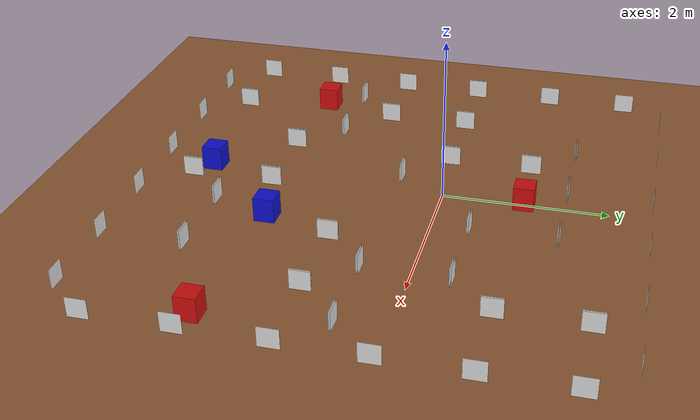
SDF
<sdf version="1.5">
 <world name="maze_6x6_v1_victimas">
  <physics type="ode">
   <max_step_size>0.001</max_step_size>
   <real_time_factor>1</real_time_factor>
   <real_time_update_rate>1000</real_time_update_rate>
   <gravity>0 0 -9.8</gravity>
  </physics>
  <plugin filename="gz-sim-physics-system" name="gz::sim::systems::Physics"/>
  <plugin filename="gz-sim-user-commands-system" name="gz::sim::systems::UserCommands"/>
  <plugin filename="gz-sim-scene-broadcaster-system" name="gz::sim::systems::SceneBroadcaster"/>
  <plugin filename="gz-sim-contact-system" name="gz::sim::systems::Contact"/>
  <plugin filename="gz-sim-sensors-system" name="gz::sim::systems::Sensors">
   <render_engine>ogre2</render_engine>
  </plugin>
  <plugin filename="gz-sim-imu-system" name="gz::sim::systems::Imu"/>
  <scene>
   <shadows>false</shadows>
   <ambient>0.2 0.2 0.2 1</ambient>
   <background>1 1 1 1</background>
   <grid>false</grid>
   <origin_visual>false</origin_visual>
  </scene>
  <include><uri>model://sun</uri></include>
  <light name="camera_spot_1_light" type="spot">
   <pose>-6 4 4 0 -1 -0.8</pose>
   <diffuse>0.5 0.5 0.5 1</diffuse>
   <specular>0.1 0.1 0.1 1</specular>
   <direction>0 0 -1</direction>
   <attenuation>
    <range>20</range>
    <constant>0.2</constant>
    <linear>0.01</linear>
    <quadratic>0.001</quadratic>
   </attenuation>
   <cast_shadows>0</cast_shadows>
   <spot><inner_angle>0.6</inner_angle><outer_angle>1</outer_angle><falloff>1</falloff></spot>
  </light>
  <light name="camera_spot_2_light" type="spot">
   <pose>5 -3 4 0 0.8 -0.6</pose>
   <diffuse>0.5 0.5 0.5 1</diffuse>
   <specular>0.1 0.1 0.1 1</specular>
   <direction>0 0 -1</direction>
   <attenuation>
    <range>20</range>
    <constant>0.3</constant>
    <linear>0.01</linear>
    <quadratic>0.001</quadratic>
   </attenuation>
   <cast_shadows>0</cast_shadows>
   <spot><inner_angle>0.6</inner_angle><outer_angle>1</outer_angle><falloff>1</falloff></spot>
  </light>
  <include><uri>model://floor_parquet2</uri><pose>0.5 -0.5 0 0 0 0</pose></include>
  <include><uri>model://maze_3_tags</uri><pose>-2.5 -3.5 0 0 0 0</pose></include>
  <model name="marcas_color">
   <static>1</static>
   <link name="cuadrado_rojo_1">
    <pose>0.0013 0.9937 0.15 0 0 0</pose>
    <collision name="collision"><geometry><box><size>0.25 0.25 0.3</size></box></geometry></collision>
    <visual name="visual">
     <geometry><box><size>0.25 0.25 0.3</size></box></geometry>
     <material>
      <ambient>0.8 0.05 0.05 1</ambient>
      <diffuse>0.8 0.05 0.05 1</diffuse>
      <specular>0.1 0.1 0.1 1</specular>
     </material>
    </visual>
   </link>
   <link name="cuadrado_azul_1">
    <pose>0.9563 -1.9086 0.15 0 0 0</pose>
    <collision name="collision"><geometry><box><size>0.25 0.25 0.3</size></box></geometry></collision>
    <visual name="visual">
     <geometry><box><size>0.25 0.25 0.3</size></box></geometry>
     <material>
      <ambient>0.05 0.05 0.8 1</ambient>
      <diffuse>0.05 0.05 0.8 1</diffuse>
      <specular>0.1 0.1 0.1 1</specular>
     </material>
    </visual>
   </link>
   <link name="cuadrado_rojo_2">
    <pose>2.9552 -2.0360 0.15 0 0 0</pose>
    <collision name="collision"><geometry><box><size>0.25 0.25 0.3</size></box></geometry></collision>
    <visual name="visual">
     <geometry><box><size>0.25 0.25 0.3</size></box></geometry>
     <material>
      <ambient>0.8 0.05 0.05 1</ambient>
      <diffuse>0.8 0.05 0.05 1</diffuse>
      <specular>0.1 0.1 0.1 1</specular>
     </material>
    </visual>
   </link>
   <link name="cuadrado_azul_2">
    <pose>-0.0847 -2.9586 0.15 0 0 0</pose>
    <collision name="collision"><geometry><box><size>0.25 0.25 0.3</size></box></geometry></collision>
    <visual name="visual">
     <geometry><box><size>0.25 0.25 0.3</size></box></geometry>
     <material>
      <ambient>0.05 0.05 0.8 1</ambient>
      <diffuse>0.05 0.05 0.8 1</diffuse>
      <specular>0.1 0.1 0.1 1</specular>
     </material>
    </visual>
   </link>
   <link name="cuadrado_rojo_3">
    <pose>-2.0847 -2.0202 0.15 0 0 0</pose>
    <collision name="collision"><geometry><box><size>0.25 0.25 0.3</size></box></geometry></collision>
    <visual name="visual">
     <geometry><box><size>0.25 0.25 0.3</size></box></geometry>
     <material>
      <ambient>0.8 0.05 0.05 1</ambient>
      <diffuse>0.8 0.05 0.05 1</diffuse>
      <specular>0.1 0.1 0.1 1</specular>
     </material>
    </visual>
   </link>
  </model>
 </world>
</sdf>

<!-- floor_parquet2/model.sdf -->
<sdf version='1.4'>
  <model name='parquet2_plane'>
    <static>true</static>
    <link name='link'>
      <collision name='collision_parquet2'>
        <geometry>
          <plane>
            <normal>0 0 1</normal>
            <size>500 500</size>
          </plane>
        </geometry>
        <surface>
          <friction>
            <ode>
              <mu>0.5</mu>
              <mu2>.5</mu2>
            </ode>
          </friction>
        </surface>
      </collision>
      <visual name='visual_parquet2'>
        <pose>0 0 0 0 0 0</pose>

        <cast_shadows>false</cast_shadows>
        <geometry>
          <plane>
            <normal>0 0 1</normal>
            <size>9 9</size>
          </plane>
        </geometry>
        <material>
          <ambient>0.35 0.22 0.13 1</ambient>
          <diffuse>0.55 0.35 0.20 1</diffuse>
          <specular>0.05 0.05 0.05 1</specular>
        </material>
      </visual>
    </link>
  </model>
</sdf>

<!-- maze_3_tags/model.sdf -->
<sdf version="1.5">

 <model name="tag36h11_maze_3">
    <static>true</static>
    <link name='tags'>

<!-- Row 0, outer wall along increasing x axis (y:0) -->
<!-- Tags 0 to 9 -->
      <visual name='tag36_11_00000'>
        <!-- Y: sets yaw or direction towards the ar tag is pointing to -->
        <pose>0.5 0.011 0.3 1.5708 0 3.14159</pose>
        <cast_shadows>false</cast_shadows>
        <geometry>
          <plane>
            <normal>0 0 1</normal>
            <size>0.24 0.24</size>
          </plane>
        </geometry>
        <material>
          <ambient>0.85 0.85 0.85 1</ambient>
          <diffuse>0.85 0.85 0.85 1</diffuse>
          <specular>0.1 0.1 0.1 1</specular>
        </material>
      </visual>

      <visual name='tag36_11_00001'>
        <pose>1.5 0.011 0.3 1.5708 0 3.14159</pose>
        <cast_shadows>false</cast_shadows>
        <geometry>
          <plane>
            <normal>0 0 1</normal>
            <size>0.24 0.24</size>
          </plane>
        </geometry>
        <material>
          <ambient>0.85 0.85 0.85 1</ambient>
          <diffuse>0.85 0.85 0.85 1</diffuse>
          <specular>0.1 0.1 0.1 1</specular>
        </material>
      </visual>

      <visual name='tag36_11_00002'>
        <pose>2.5 0.011 0.3 1.5708 0 3.14159</pose>
        <cast_shadows>false</cast_shadows>
        <geometry>
          <plane>
            <normal>0 0 1</normal>
            <size>0.24 0.24</size>
          </plane>
        </geometry>
        <material>
          <ambient>0.85 0.85 0.85 1</ambient>
          <diffuse>0.85 0.85 0.85 1</diffuse>
          <specular>0.1 0.1 0.1 1</specular>
        </material>
      </visual>

      <visual name='tag36_11_00003'>
        <pose>3.5 0.011 0.3 1.5708 0 3.14159</pose>
        <cast_shadows>false</cast_shadows>
        <geometry>
          <plane>
            <normal>0 0 1</normal>
            <size>0.24 0.24</size>
          </plane>
        </geometry>
        <material>
          <ambient>0.85 0.85 0.85 1</ambient>
          <diffuse>0.85 0.85 0.85 1</diffuse>
          <specular>0.1 0.1 0.1 1</specular>
        </material>
      </visual>

      <visual name='tag36_11_00004'>
        <pose>4.5 0.011 0.3 1.5708 0 3.14159</pose>
        <cast_shadows>false</cast_shadows>
        <geometry>
          <plane>
            <normal>0 0 1</normal>
            <size>0.24 0.24</size>
          </plane>
        </geometry>
        <material>
          <ambient>0.85 0.85 0.85 1</ambient>
          <diffuse>0.85 0.85 0.85 1</diffuse>
          <specular>0.1 0.1 0.1 1</specular>
        </material>
      </visual>

      <visual name='tag36_11_00005'>
        <pose>5.5 0.011 0.3 1.5708 0 3.14159</pose>
        <cast_shadows>false</cast_shadows>
        <geometry>
          <plane>
            <normal>0 0 1</normal>
            <size>0.24 0.24</size>
          </plane>
        </geometry>
        <material>
          <ambient>0.85 0.85 0.85 1</ambient>
          <diffuse>0.85 0.85 0.85 1</diffuse>
          <specular>0.1 0.1 0.1 1</specular>
        </material>
      </visual>

<!-- Row 1, first row of panels along increasing x axis (y:1) -->
      <!-- Tags 10 to 29 -->
      <!-- Panel 1 in Row 1 -->
      <!-- Panel 2 in Row 1 -->

      <!-- Panel 3 in Row 1 -->

      <!-- Panel 4 in Row 1 -->
      <visual name='tag36_11_00016'>
        <pose>3.5 1.011 0.3 1.5708 0 3.14159</pose>
        <cast_shadows>false</cast_shadows>
        <geometry>
          <plane>
            <normal>0 0 1</normal>
            <size>0.24 0.24</size>
          </plane>
        </geometry>
        <material>
          <ambient>0.85 0.85 0.85 1</ambient>
          <diffuse>0.85 0.85 0.85 1</diffuse>
          <specular>0.1 0.1 0.1 1</specular>
        </material>
      </visual>

      <visual name='tag36_11_00017'>
        <pose>3.5 0.989 0.3 1.5708 0 0</pose>
        <cast_shadows>false</cast_shadows>
        <geometry>
          <plane>
            <normal>0 0 1</normal>
            <size>0.24 0.24</size>
          </plane>
        </geometry>
        <material>
          <ambient>0.85 0.85 0.85 1</ambient>
          <diffuse>0.85 0.85 0.85 1</diffuse>
          <specular>0.1 0.1 0.1 1</specular>
        </material>
      </visual>

     <!-- Panel 5 in Row 1 -->
      <visual name='tag36_11_00018'>
        <pose>4.5 1.011 0.3 1.5708 0 3.14159</pose>
        <cast_shadows>false</cast_shadows>
        <geometry>
          <plane>
            <normal>0 0 1</normal>
            <size>0.24 0.24</size>
          </plane>
        </geometry>
        <material>
          <ambient>0.85 0.85 0.85 1</ambient>
          <diffuse>0.85 0.85 0.85 1</diffuse>
          <specular>0.1 0.1 0.1 1</specular>
        </material>
      </visual>

      <visual name='tag36_11_00019'>
        <pose>4.5 0.989 0.3 1.5708 0 0</pose>
        <cast_shadows>false</cast_shadows>
        <geometry>
          <plane>
            <normal>0 0 1</normal>
            <size>0.24 0.24</size>
          </plane>
        </geometry>
        <material>
          <ambient>0.85 0.85 0.85 1</ambient>
          <diffuse>0.85 0.85 0.85 1</diffuse>
          <specular>0.1 0.1 0.1 1</specular>
        </material>
      </visual>

      <!-- Panel 6 in Row 1 -->

<!-- Row 2, second row of panels along increasing x axis (y:2) -->
      <!-- Tags 30 to 49 -->
      <!-- Panel 1 in Row 2 -->
      <visual name='tag36_11_00030'>
        <!-- Y: sets yaw or direction towards the ar tag is pointing to -->
        <pose>0.5 2.011 0.3 1.5708 0 3.14159</pose>
        <cast_shadows>false</cast_shadows>
        <geometry>
          <plane>
            <normal>0 0 1</normal>
            <size>0.24 0.24</size>
          </plane>
        </geometry>
        <material>
          <ambient>0.85 0.85 0.85 1</ambient>
          <diffuse>0.85 0.85 0.85 1</diffuse>
          <specular>0.1 0.1 0.1 1</specular>
        </material>
      </visual>

      <visual name='tag36_11_00031'>
        <!-- Y: sets yaw or direction towards the ar tag is pointing to -->
        <pose>0.5 1.989 0.3 1.5708 0 0</pose>
        <cast_shadows>false</cast_shadows>
        <geometry>
          <plane>
            <normal>0 0 1</normal>
            <size>0.24 0.24</size>
          </plane>
        </geometry>
        <material>
          <ambient>0.85 0.85 0.85 1</ambient>
          <diffuse>0.85 0.85 0.85 1</diffuse>
          <specular>0.1 0.1 0.1 1</specular>
        </material>
      </visual>

      <!-- Panel 2 in Row 2 -->
      <visual name='tag36_11_00032'>
        <pose>1.5 2.011 0.3 1.5708 0 3.14159</pose>
        <cast_shadows>false</cast_shadows>
        <geometry>
          <plane>
            <normal>0 0 1</normal>
            <size>0.24 0.24</size>
          </plane>
        </geometry>
        <material>
          <ambient>0.85 0.85 0.85 1</ambient>
          <diffuse>0.85 0.85 0.85 1</diffuse>
          <specular>0.1 0.1 0.1 1</specular>
        </material>
      </visual>

      <visual name='tag36_11_00033'>
        <pose>1.5 1.989 0.3 1.5708 0 0</pose>
        <cast_shadows>false</cast_shadows>
        <geometry>
          <plane>
            <normal>0 0 1</normal>
            <size>0.24 0.24</size>
          </plane>
        </geometry>
        <material>
          <ambient>0.85 0.85 0.85 1</ambient>
          <diffuse>0.85 0.85 0.85 1</diffuse>
          <specular>0.1 0.1 0.1 1</specular>
        </material>
      </visual>

      <!-- Panel 3 in Row 2 -->

      <!-- Panel 4 in Row 2 -->

     <!-- Panel 5 in Row 2 -->

      <!-- Panel 6 in Row 2 -->

<!-- Row 3, third row of panels along increasing x axis (y:3) -->
      <!-- Tags 50 to 69 -->
      <!-- Panel 1 in Row 3 -->
      <!-- Panel 2 in Row 3 -->
      <!-- Panel 3 in Row 3 -->
      <visual name='tag36_11_00054'>
        <pose>2.5 3.011 0.3 1.5708 0 3.14159</pose>
        <cast_shadows>false</cast_shadows>
        <geometry>
          <plane>
            <normal>0 0 1</normal>
            <size>0.24 0.24</size>
          </plane>
        </geometry>
        <material>
          <ambient>0.85 0.85 0.85 1</ambient>
          <diffuse>0.85 0.85 0.85 1</diffuse>
          <specular>0.1 0.1 0.1 1</specular>
        </material>
      </visual>

      <visual name='tag36_11_00055'>
        <pose>2.5 2.989 0.3 1.5708 0 0</pose>
        <cast_shadows>false</cast_shadows>
        <geometry>
          <plane>
            <normal>0 0 1</normal>
            <size>0.24 0.24</size>
          </plane>
        </geometry>
        <material>
          <ambient>0.85 0.85 0.85 1</ambient>
          <diffuse>0.85 0.85 0.85 1</diffuse>
          <specular>0.1 0.1 0.1 1</specular>
        </material>
      </visual>

      <!-- Panel 4 in Row 3 -->
     <!-- Panel 5 in Row 3 -->
      <visual name='tag36_11_00058'>
        <pose>4.5 3.011 0.3 1.5708 0 3.14159</pose>
        <cast_shadows>false</cast_shadows>
        <geometry>
          <plane>
            <normal>0 0 1</normal>
            <size>0.24 0.24</size>
          </plane>
        </geometry>
        <material>
          <ambient>0.85 0.85 0.85 1</ambient>
          <diffuse>0.85 0.85 0.85 1</diffuse>
          <specular>0.1 0.1 0.1 1</specular>
        </material>
      </visual>

      <visual name='tag36_11_00059'>
        <pose>4.5 2.989 0.3 1.5708 0 0</pose>
        <cast_shadows>false</cast_shadows>
        <geometry>
          <plane>
            <normal>0 0 1</normal>
            <size>0.24 0.24</size>
          </plane>
        </geometry>
        <material>
          <ambient>0.85 0.85 0.85 1</ambient>
          <diffuse>0.85 0.85 0.85 1</diffuse>
          <specular>0.1 0.1 0.1 1</specular>
        </material>
      </visual>

      <!-- Panel 6 in Row 3 -->
      <visual name='tag36_11_00060'>
        <pose>5.5 3.011 0.3 1.5708 0 3.14159</pose>
        <cast_shadows>false</cast_shadows>
        <geometry>
          <plane>
            <normal>0 0 1</normal>
            <size>0.24 0.24</size>
          </plane>
        </geometry>
        <material>
          <ambient>0.85 0.85 0.85 1</ambient>
          <diffuse>0.85 0.85 0.85 1</diffuse>
          <specular>0.1 0.1 0.1 1</specular>
        </material>
      </visual>

      <visual name='tag36_11_00061'>
        <pose>5.5 2.989 0.3 1.5708 0 0</pose>
        <cast_shadows>false</cast_shadows>
        <geometry>
          <plane>
            <normal>0 0 1</normal>
            <size>0.24 0.24</size>
          </plane>
        </geometry>
        <material>
          <ambient>0.85 0.85 0.85 1</ambient>
          <diffuse>0.85 0.85 0.85 1</diffuse>
          <specular>0.1 0.1 0.1 1</specular>
        </material>
      </visual>

<!-- Row 4, fourth row of panels along increasing x axis (y:4) -->
      <!-- Tags 70 to 89 -->
      <!-- Panel 1 in Row 4 -->
      <!-- Panel 2 in Row 4 -->
      <!-- Panel 3 in Row 4 -->
      <!-- Panel 4 in Row 4 -->
      <visual name='tag36_11_00076'>
        <pose>3.5 4.011 0.3 1.5708 0 3.14159</pose>
        <cast_shadows>false</cast_shadows>
        <geometry>
          <plane>
            <normal>0 0 1</normal>
            <size>0.24 0.24</size>
          </plane>
        </geometry>
        <material>
          <ambient>0.85 0.85 0.85 1</ambient>
          <diffuse>0.85 0.85 0.85 1</diffuse>
          <specular>0.1 0.1 0.1 1</specular>
        </material>
      </visual>

      <visual name='tag36_11_00077'>
        <pose>3.5 3.989 0.3 1.5708 0 0</pose>
        <cast_shadows>false</cast_shadows>
        <geometry>
          <plane>
            <normal>0 0 1</normal>
            <size>0.24 0.24</size>
          </plane>
        </geometry>
        <material>
          <ambient>0.85 0.85 0.85 1</ambient>
          <diffuse>0.85 0.85 0.85 1</diffuse>
          <specular>0.1 0.1 0.1 1</specular>
        </material>
      </visual>

     <!-- Panel 5 in Row 4 -->
      <visual name='tag36_11_00078'>
        <pose>4.5 4.011 0.3 1.5708 0 3.14159</pose>
        <cast_shadows>false</cast_shadows>
        <geometry>
          <plane>
            <normal>0 0 1</normal>
            <size>0.24 0.24</size>
          </plane>
        </geometry>
        <material>
          <ambient>0.85 0.85 0.85 1</ambient>
          <diffuse>0.85 0.85 0.85 1</diffuse>
          <specular>0.1 0.1 0.1 1</specular>
        </material>
      </visual>

      <visual name='tag36_11_00079'>
        <pose>4.5 3.989 0.3 1.5708 0 0</pose>
        <cast_shadows>false</cast_shadows>
        <geometry>
          <plane>
            <normal>0 0 1</normal>
            <size>0.24 0.24</size>
          </plane>
        </geometry>
        <material>
          <ambient>0.85 0.85 0.85 1</ambient>
          <diffuse>0.85 0.85 0.85 1</diffuse>
          <specular>0.1 0.1 0.1 1</specular>
        </material>
      </visual>

      <!-- Panel 6 in Row 4 -->
<!-- Row 5, fifth row of panels along increasing x axis (y:5) -->
      <!-- Tags 90 to 109 -->
      <!-- Panel 1 in Row 5 -->
      <!-- Panel 2 in Row 5 -->

      <visual name='tag36_11_00092'>
        <pose>1.5 5.011 0.3 1.5708 0 3.14159</pose>
        <cast_shadows>false</cast_shadows>
        <geometry>
          <plane>
            <normal>0 0 1</normal>
            <size>0.24 0.24</size>
          </plane>
        </geometry>
        <material>
          <ambient>0.85 0.85 0.85 1</ambient>
          <diffuse>0.85 0.85 0.85 1</diffuse>
          <specular>0.1 0.1 0.1 1</specular>
        </material>
      </visual>

      <visual name='tag36_11_00093'>
        <pose>1.5 4.989 0.3 1.5708 0 0</pose>
        <cast_shadows>false</cast_shadows>
        <geometry>
          <plane>
            <normal>0 0 1</normal>
            <size>0.24 0.24</size>
          </plane>
        </geometry>
        <material>
          <ambient>0.85 0.85 0.85 1</ambient>
          <diffuse>0.85 0.85 0.85 1</diffuse>
          <specular>0.1 0.1 0.1 1</specular>
        </material>
      </visual>

      <!-- Panel 3 in Row 5 -->
      <visual name='tag36_11_00094'>
        <pose>2.5 5.011 0.3 1.5708 0 3.14159</pose>
        <cast_shadows>false</cast_shadows>
        <geometry>
          <plane>
            <normal>0 0 1</normal>
            <size>0.24 0.24</size>
          </plane>
        </geometry>
        <material>
          <ambient>0.85 0.85 0.85 1</ambient>
          <diffuse>0.85 0.85 0.85 1</diffuse>
          <specular>0.1 0.1 0.1 1</specular>
        </material>
      </visual>

      <visual name='tag36_11_00095'>
        <pose>2.5 4.989 0.3 1.5708 0 0</pose>
        <cast_shadows>false</cast_shadows>
        <geometry>
          <plane>
            <normal>0 0 1</normal>
            <size>0.24 0.24</size>
          </plane>
        </geometry>
        <material>
          <ambient>0.85 0.85 0.85 1</ambient>
          <diffuse>0.85 0.85 0.85 1</diffuse>
          <specular>0.1 0.1 0.1 1</specular>
        </material>
      </visual>

      <!-- Panel 4 in Row 5 -->
      <visual name='tag36_11_00096'>
        <pose>3.5 5.011 0.3 1.5708 0 3.14159</pose>
        <cast_shadows>false</cast_shadows>
        <geometry>
          <plane>
            <normal>0 0 1</normal>
            <size>0.24 0.24</size>
          </plane>
        </geometry>
        <material>
          <ambient>0.85 0.85 0.85 1</ambient>
          <diffuse>0.85 0.85 0.85 1</diffuse>
          <specular>0.1 0.1 0.1 1</specular>
        </material>
      </visual>

      <visual name='tag36_11_00097'>
        <pose>3.5 4.989 0.3 1.5708 0 0</pose>
        <cast_shadows>false</cast_shadows>
        <geometry>
          <plane>
            <normal>0 0 1</normal>
            <size>0.24 0.24</size>
          </plane>
        </geometry>
        <material>
          <ambient>0.85 0.85 0.85 1</ambient>
          <diffuse>0.85 0.85 0.85 1</diffuse>
          <specular>0.1 0.1 0.1 1</specular>
        </material>
      </visual>

     <!-- Panel 5 in Row 5 -->
      <!-- Panel 6 in Row 5 -->

<!-- Row 6, sixth row of panels along increasing x axis (y:6) -->
      <!-- Tags 110 to 129 -->
      <!-- Panel 1 in Row 6 -->
      <visual name='tag36_11_00111'>
        <pose>0.5 5.989 0.3 1.5708 0 0</pose>
        <cast_shadows>false</cast_shadows>
        <geometry>
          <plane>
            <normal>0 0 1</normal>
            <size>0.24 0.24</size>
          </plane>
        </geometry>
        <material>
          <ambient>0.85 0.85 0.85 1</ambient>
          <diffuse>0.85 0.85 0.85 1</diffuse>
          <specular>0.1 0.1 0.1 1</specular>
        </material>
      </visual>

      <!-- Panel 2 in Row 6 -->
      <visual name='tag36_11_00113'>
        <pose>1.5 5.989 0.3 1.5708 0 0</pose>
        <cast_shadows>false</cast_shadows>
        <geometry>
          <plane>
            <normal>0 0 1</normal>
            <size>0.24 0.24</size>
          </plane>
        </geometry>
        <material>
          <ambient>0.85 0.85 0.85 1</ambient>
          <diffuse>0.85 0.85 0.85 1</diffuse>
          <specular>0.1 0.1 0.1 1</specular>
        </material>
      </visual>

      <!-- Panel 3 in Row 6 -->
      <visual name='tag36_11_00115'>
        <pose>2.5 5.989 0.3 1.5708 0 0</pose>
        <cast_shadows>false</cast_shadows>
        <geometry>
          <plane>
            <normal>0 0 1</normal>
            <size>0.24 0.24</size>
          </plane>
        </geometry>
        <material>
          <ambient>0.85 0.85 0.85 1</ambient>
          <diffuse>0.85 0.85 0.85 1</diffuse>
          <specular>0.1 0.1 0.1 1</specular>
        </material>
      </visual>

      <!-- Panel 4 in Row 6 -->
      <visual name='tag36_11_00117'>
        <pose>3.5 5.989 0.3 1.5708 0 0</pose>
        <cast_shadows>false</cast_shadows>
        <geometry>
          <plane>
            <normal>0 0 1</normal>
            <size>0.24 0.24</size>
          </plane>
        </geometry>
        <material>
          <ambient>0.85 0.85 0.85 1</ambient>
          <diffuse>0.85 0.85 0.85 1</diffuse>
          <specular>0.1 0.1 0.1 1</specular>
        </material>
      </visual>

     <!-- Panel 5 in Row 6 -->
      <visual name='tag36_11_00119'>
        <pose>4.5 5.989 0.3 1.5708 0 0</pose>
        <cast_shadows>false</cast_shadows>
        <geometry>
          <plane>
            <normal>0 0 1</normal>
            <size>0.24 0.24</size>
          </plane>
        </geometry>
        <material>
          <ambient>0.85 0.85 0.85 1</ambient>
          <diffuse>0.85 0.85 0.85 1</diffuse>
          <specular>0.1 0.1 0.1 1</specular>
        </material>
      </visual>

      <!-- Panel 6 in Row 6 -->
      <visual name='tag36_11_00121'>
        <pose>5.5 5.989 0.3 1.5708 0 0</pose>
        <cast_shadows>false</cast_shadows>
        <geometry>
          <plane>
            <normal>0 0 1</normal>
            <size>0.24 0.24</size>
          </plane>
        </geometry>
        <material>
          <ambient>0.85 0.85 0.85 1</ambient>
          <diffuse>0.85 0.85 0.85 1</diffuse>
          <specular>0.1 0.1 0.1 1</specular>
        </material>
      </visual>

<!-- Placeholder Row 7, seventh row of panels along increasing x axis (y:7) -->
      <!-- Tags 130 to 149 -->

<!-- Placeholder Row 8, seventh row of panels along increasing x axis (y:8) -->
      <!-- Tags 150 to 169 -->

<!-- Placeholder Row 9, seventh row of panels along increasing x axis (y:9) -->
      <!-- Tags 170 to 189 -->

<!-- Placeholder Row 10, seventh row of panels along increasing x axis (y:10) -->
      <!-- Tags 190 to 209 -->

<!-- Column 0, outer wall along increasing y axis (x:0) -->
<!-- Tags 300 to 309 -->
      <visual name='tag36_11_00300'>
        <!-- Y: sets yaw or direction towards the ar tag is pointing to -->
        <pose>0.011 0.5 0.3 1.5708 0 1.5708</pose>
        <cast_shadows>false</cast_shadows>
        <geometry>
          <plane>
            <normal>0 0 1</normal>
            <size>0.24 0.24</size>
          </plane>
        </geometry>
        <material>
          <ambient>0.85 0.85 0.85 1</ambient>
          <diffuse>0.85 0.85 0.85 1</diffuse>
          <specular>0.1 0.1 0.1 1</specular>
        </material>
      </visual>

      <visual name='tag36_11_00301'>
        <pose>0.011 1.5 0.3 1.5708 0 1.5708</pose>
        <cast_shadows>false</cast_shadows>
        <geometry>
          <plane>
            <normal>0 0 1</normal>
            <size>0.24 0.24</size>
          </plane>
        </geometry>
        <material>
          <ambient>0.85 0.85 0.85 1</ambient>
          <diffuse>0.85 0.85 0.85 1</diffuse>
          <specular>0.1 0.1 0.1 1</specular>
        </material>
      </visual>

      <visual name='tag36_11_00302'>
        <pose>0.011 2.5 0.3 1.5708 0 1.5708</pose>
        <cast_shadows>false</cast_shadows>
        <geometry>
          <plane>
            <normal>0 0 1</normal>
            <size>0.24 0.24</size>
          </plane>
        </geometry>
        <material>
          <ambient>0.85 0.85 0.85 1</ambient>
          <diffuse>0.85 0.85 0.85 1</diffuse>
          <specular>0.1 0.1 0.1 1</specular>
        </material>
      </visual>

      <visual name='tag36_11_00303'>
        <pose>0.011 3.5 0.3 1.5708 0 1.5708</pose>
        <cast_shadows>false</cast_shadows>
        <geometry>
          <plane>
            <normal>0 0 1</normal>
            <size>0.24 0.24</size>
          </plane>
        </geometry>
        <material>
          <ambient>0.85 0.85 0.85 1</ambient>
          <diffuse>0.85 0.85 0.85 1</diffuse>
          <specular>0.1 0.1 0.1 1</specular>
        </material>
      </visual>

      <visual name='tag36_11_00304'>
        <pose>0.011 4.5 0.3 1.5708 0 1.5708</pose>
        <cast_shadows>false</cast_shadows>
        <geometry>
          <plane>
            <normal>0 0 1</normal>
            <size>0.24 0.24</size>
          </plane>
        </geometry>
        <material>
          <ambient>0.85 0.85 0.85 1</ambient>
          <diffuse>0.85 0.85 0.85 1</diffuse>
          <specular>0.1 0.1 0.1 1</specular>
        </material>
      </visual>

      <visual name='tag36_11_00305'>
        <pose>0.011 5.5 0.3 1.5708 0 1.5708</pose>
        <cast_shadows>false</cast_shadows>
        <geometry>
          <plane>
            <normal>0 0 1</normal>
            <size>0.24 0.24</size>
          </plane>
        </geometry>
        <material>
          <ambient>0.85 0.85 0.85 1</ambient>
          <diffuse>0.85 0.85 0.85 1</diffuse>
          <specular>0.1 0.1 0.1 1</specular>
        </material>
      </visual>

<!-- Column 1, first row of panels along increasing y axis (x:1) -->
      <!-- Tags 310 to 329 -->
      <!-- Panel 1 in Column 1 -->

      <visual name='tag36_11_00310'>
        <pose>1.011 0.5 0.3 1.5708 0 1.5708</pose>
        <cast_shadows>false</cast_shadows>
        <geometry>
          <plane>
            <normal>0 0 1</normal>
            <size>0.24 0.24</size>
          </plane>
        </geometry>
        <material>
          <ambient>0.85 0.85 0.85 1</ambient>
          <diffuse>0.85 0.85 0.85 1</diffuse>
          <specular>0.1 0.1 0.1 1</specular>
        </material>
      </visual>

      <visual name='tag36_11_00311'>
        <pose>0.989 0.5 0.3 1.5708 0 -1.5708</pose>
        <cast_shadows>false</cast_shadows>
        <geometry>
          <plane>
            <normal>0 0 1</normal>
            <size>0.24 0.24</size>
          </plane>
        </geometry>
        <material>
          <ambient>0.85 0.85 0.85 1</ambient>
          <diffuse>0.85 0.85 0.85 1</diffuse>
          <specular>0.1 0.1 0.1 1</specular>
        </material>
      </visual>

      <!-- Panel 2 in Column 1 -->

      <!-- Panel 3 in Column 1 -->
      <visual name='tag36_11_00314'>
        <pose>1.011 2.5 0.3 1.5708 0 1.5708</pose>
        <cast_shadows>false</cast_shadows>
        <geometry>
          <plane>
            <normal>0 0 1</normal>
            <size>0.24 0.24</size>
          </plane>
        </geometry>
        <material>
          <ambient>0.85 0.85 0.85 1</ambient>
          <diffuse>0.85 0.85 0.85 1</diffuse>
          <specular>0.1 0.1 0.1 1</specular>
        </material>
      </visual>

      <visual name='tag36_11_00315'>
        <pose>0.989 2.5 0.3 1.5708 0 -1.5708</pose>
        <cast_shadows>false</cast_shadows>
        <geometry>
          <plane>
            <normal>0 0 1</normal>
            <size>0.24 0.24</size>
          </plane>
        </geometry>
        <material>
          <ambient>0.85 0.85 0.85 1</ambient>
          <diffuse>0.85 0.85 0.85 1</diffuse>
          <specular>0.1 0.1 0.1 1</specular>
        </material>
      </visual>

      <!-- Panel 4 in Column 1 -->
      <visual name='tag36_11_00316'>
        <pose>1.011 3.5 0.3 1.5708 0 1.5708</pose>
        <cast_shadows>false</cast_shadows>
        <geometry>
          <plane>
            <normal>0 0 1</normal>
            <size>0.24 0.24</size>
          </plane>
        </geometry>
        <material>
          <ambient>0.85 0.85 0.85 1</ambient>
          <diffuse>0.85 0.85 0.85 1</diffuse>
          <specular>0.1 0.1 0.1 1</specular>
        </material>
      </visual>

      <visual name='tag36_11_00317'>
        <pose>0.989 3.5 0.3 1.5708 0 -1.5708</pose>
        <cast_shadows>false</cast_shadows>
        <geometry>
          <plane>
            <normal>0 0 1</normal>
            <size>0.24 0.24</size>
          </plane>
        </geometry>
        <material>
          <ambient>0.85 0.85 0.85 1</ambient>
          <diffuse>0.85 0.85 0.85 1</diffuse>
          <specular>0.1 0.1 0.1 1</specular>
        </material>
      </visual>

     <!-- Panel 5 in Column 1 -->

      <!-- Panel 6 in Column 1 -->

<!-- Column 2, second row of panels along increasing y axis (x:2) -->
      <!-- Tags 330 to 349 -->
      <!-- Panel 1 in Column 2 -->

      <!-- Panel 2 in Column 2 -->
      <visual name='tag36_11_00332'>
        <pose>2.011 1.5 0.3 1.5708 0 1.5708</pose>
        <cast_shadows>false</cast_shadows>
        <geometry>
          <plane>
            <normal>0 0 1</normal>
            <size>0.24 0.24</size>
          </plane>
        </geometry>
        <material>
          <ambient>0.85 0.85 0.85 1</ambient>
          <diffuse>0.85 0.85 0.85 1</diffuse>
          <specular>0.1 0.1 0.1 1</specular>
        </material>
      </visual>

      <visual name='tag36_11_00333'>
        <pose>1.989 1.5 0.3 1.5708 0 -1.5708</pose>
        <cast_shadows>false</cast_shadows>
        <geometry>
          <plane>
            <normal>0 0 1</normal>
            <size>0.24 0.24</size>
          </plane>
        </geometry>
        <material>
          <ambient>0.85 0.85 0.85 1</ambient>
          <diffuse>0.85 0.85 0.85 1</diffuse>
          <specular>0.1 0.1 0.1 1</specular>
        </material>
      </visual>

      <!-- Panel 3 in Column 2 -->

      <!-- Panel 4 in Column 2 -->
      <visual name='tag36_11_00336'>
        <pose>2.011 3.5 0.3 1.5708 0 1.5708</pose>
        <cast_shadows>false</cast_shadows>
        <geometry>
          <plane>
            <normal>0 0 1</normal>
            <size>0.24 0.24</size>
          </plane>
        </geometry>
        <material>
          <ambient>0.85 0.85 0.85 1</ambient>
          <diffuse>0.85 0.85 0.85 1</diffuse>
          <specular>0.1 0.1 0.1 1</specular>
        </material>
      </visual>

      <visual name='tag36_11_00337'>
        <pose>1.989 3.5 0.3 1.5708 0 -1.5708</pose>
        <cast_shadows>false</cast_shadows>
        <geometry>
          <plane>
            <normal>0 0 1</normal>
            <size>0.24 0.24</size>
          </plane>
        </geometry>
        <material>
          <ambient>0.85 0.85 0.85 1</ambient>
          <diffuse>0.85 0.85 0.85 1</diffuse>
          <specular>0.1 0.1 0.1 1</specular>
        </material>
      </visual>

     <!-- Panel 5 in Column 2 -->
      <visual name='tag36_11_00338'>
        <pose>2.011 4.5 0.3 1.5708 0 1.5708</pose>
        <cast_shadows>false</cast_shadows>
        <geometry>
          <plane>
            <normal>0 0 1</normal>
            <size>0.24 0.24</size>
          </plane>
        </geometry>
        <material>
          <ambient>0.85 0.85 0.85 1</ambient>
          <diffuse>0.85 0.85 0.85 1</diffuse>
          <specular>0.1 0.1 0.1 1</specular>
        </material>
      </visual>

      <visual name='tag36_11_00339'>
        <pose>1.989 4.5 0.3 1.5708 0 -1.5708</pose>
        <cast_shadows>false</cast_shadows>
        <geometry>
          <plane>
            <normal>0 0 1</normal>
            <size>0.24 0.24</size>
          </plane>
        </geometry>
        <material>
          <ambient>0.85 0.85 0.85 1</ambient>
          <diffuse>0.85 0.85 0.85 1</diffuse>
          <specular>0.1 0.1 0.1 1</specular>
        </material>
      </visual>

      <!-- Panel 6 in Column 2 -->

<!-- Column 3, third row of panels along increasing y axis (x:3) -->
      <!-- Tags 350 to 369 -->
      <!-- Panel 1 in Column 3 -->

      <visual name='tag36_11_00350'>
        <pose>3.011 0.5 0.3 1.5708 0 1.5708</pose>
        <cast_shadows>false</cast_shadows>
        <geometry>
          <plane>
            <normal>0 0 1</normal>
            <size>0.24 0.24</size>
          </plane>
        </geometry>
        <material>
          <ambient>0.85 0.85 0.85 1</ambient>
          <diffuse>0.85 0.85 0.85 1</diffuse>
          <specular>0.1 0.1 0.1 1</specular>
        </material>
      </visual>

      <visual name='tag36_11_00351'>
        <pose>2.989 0.5 0.3 1.5708 0 -1.5708</pose>
        <cast_shadows>false</cast_shadows>
        <geometry>
          <plane>
            <normal>0 0 1</normal>
            <size>0.24 0.24</size>
          </plane>
        </geometry>
        <material>
          <ambient>0.85 0.85 0.85 1</ambient>
          <diffuse>0.85 0.85 0.85 1</diffuse>
          <specular>0.1 0.1 0.1 1</specular>
        </material>
      </visual>

      <!-- Panel 2 in Column 3 -->

      <visual name='tag36_11_00352'>
        <pose>3.011 1.5 0.3 1.5708 0 1.5708</pose>
        <cast_shadows>false</cast_shadows>
        <geometry>
          <plane>
            <normal>0 0 1</normal>
            <size>0.24 0.24</size>
          </plane>
        </geometry>
        <material>
          <ambient>0.85 0.85 0.85 1</ambient>
          <diffuse>0.85 0.85 0.85 1</diffuse>
          <specular>0.1 0.1 0.1 1</specular>
        </material>
      </visual>

      <visual name='tag36_11_00353'>
        <pose>2.989 1.5 0.3 1.5708 0 -1.5708</pose>
        <cast_shadows>false</cast_shadows>
        <geometry>
          <plane>
            <normal>0 0 1</normal>
            <size>0.24 0.24</size>
          </plane>
        </geometry>
        <material>
          <ambient>0.85 0.85 0.85 1</ambient>
          <diffuse>0.85 0.85 0.85 1</diffuse>
          <specular>0.1 0.1 0.1 1</specular>
        </material>
      </visual>

      <!-- Panel 3 in Column 3 -->

      <!-- Panel 4 in Column 3 -->

     <!-- Panel 5 in Column 3 -->

      <!-- Panel 6 in Column 3 -->

<!-- Column 4, fourth row of panels along increasing y axis (x:4) -->
      <!-- Tags 370 to 389 -->
      <!-- Panel 1 in Column 4 -->
      <!-- Panel 2 in Column 4 -->
      <!-- Panel 3 in Column 4 -->

      <visual name='tag36_11_00374'>
        <pose>4.011 2.5 0.3 1.5708 0 1.5708</pose>
        <cast_shadows>false</cast_shadows>
        <geometry>
          <plane>
            <normal>0 0 1</normal>
            <size>0.24 0.24</size>
          </plane>
        </geometry>
        <material>
          <ambient>0.85 0.85 0.85 1</ambient>
          <diffuse>0.85 0.85 0.85 1</diffuse>
          <specular>0.1 0.1 0.1 1</specular>
        </material>
      </visual>

      <visual name='tag36_11_00375'>
        <pose>3.989 2.5 0.3 1.5708 0 -1.5708</pose>
        <cast_shadows>false</cast_shadows>
        <geometry>
          <plane>
            <normal>0 0 1</normal>
            <size>0.24 0.24</size>
          </plane>
        </geometry>
        <material>
          <ambient>0.85 0.85 0.85 1</ambient>
          <diffuse>0.85 0.85 0.85 1</diffuse>
          <specular>0.1 0.1 0.1 1</specular>
        </material>
      </visual>

      <!-- Panel 4 in Column 4 -->

     <!-- Panel 5 in Column 4 -->
      <!-- Panel 6 in Column 4 -->

<!-- Column 5, fifth row of panels along increasing y axis (x:5) -->
      <!-- Tags 390 to 409 -->
      <!-- Panel 1 in Column 5 -->
      <!-- Panel 2 in Column 5 -->

      <!-- Panel 3 in Column 5 -->

      <visual name='tag36_11_00394'>
        <pose>5.011 2.5 0.3 1.5708 0 1.5708</pose>
        <cast_shadows>false</cast_shadows>
        <geometry>
          <plane>
            <normal>0 0 1</normal>
            <size>0.24 0.24</size>
          </plane>
        </geometry>
        <material>
          <ambient>0.85 0.85 0.85 1</ambient>
          <diffuse>0.85 0.85 0.85 1</diffuse>
          <specular>0.1 0.1 0.1 1</specular>
        </material>
      </visual>

      <visual name='tag36_11_00395'>
        <pose>4.989 2.5 0.3 1.5708 0 -1.5708</pose>
        <cast_shadows>false</cast_shadows>
        <geometry>
          <plane>
            <normal>0 0 1</normal>
            <size>0.24 0.24</size>
          </plane>
        </geometry>
        <material>
          <ambient>0.85 0.85 0.85 1</ambient>
          <diffuse>0.85 0.85 0.85 1</diffuse>
          <specular>0.1 0.1 0.1 1</specular>
        </material>
      </visual>

      <!-- Panel 4 in Column 5 -->

     <!-- Panel 5 in Column 5 -->
      <visual name='tag36_11_00398'>
        <pose>5.011 4.5 0.3 1.5708 0 1.5708</pose>
        <cast_shadows>false</cast_shadows>
        <geometry>
          <plane>
            <normal>0 0 1</normal>
            <size>0.24 0.24</size>
          </plane>
        </geometry>
        <material>
          <ambient>0.85 0.85 0.85 1</ambient>
          <diffuse>0.85 0.85 0.85 1</diffuse>
          <specular>0.1 0.1 0.1 1</specular>
        </material>
      </visual>

      <visual name='tag36_11_00399'>
        <pose>4.989 4.5 0.3 1.5708 0 -1.5708</pose>
        <cast_shadows>false</cast_shadows>
        <geometry>
          <plane>
            <normal>0 0 1</normal>
            <size>0.24 0.24</size>
          </plane>
        </geometry>
        <material>
          <ambient>0.85 0.85 0.85 1</ambient>
          <diffuse>0.85 0.85 0.85 1</diffuse>
          <specular>0.1 0.1 0.1 1</specular>
        </material>
      </visual>

      <!-- Panel 6 in Column 5 -->
      <visual name='tag36_11_00400'>
        <pose>5.011 5.5 0.3 1.5708 0 1.5708</pose>
        <cast_shadows>false</cast_shadows>
        <geometry>
          <plane>
            <normal>0 0 1</normal>
            <size>0.24 0.24</size>
          </plane>
        </geometry>
        <material>
          <ambient>0.85 0.85 0.85 1</ambient>
          <diffuse>0.85 0.85 0.85 1</diffuse>
          <specular>0.1 0.1 0.1 1</specular>
        </material>
      </visual>

      <visual name='tag36_11_00401'>
        <pose>4.989 5.5 0.3 1.5708 0 -1.5708</pose>
        <cast_shadows>false</cast_shadows>
        <geometry>
          <plane>
            <normal>0 0 1</normal>
            <size>0.24 0.24</size>
          </plane>
        </geometry>
        <material>
          <ambient>0.85 0.85 0.85 1</ambient>
          <diffuse>0.85 0.85 0.85 1</diffuse>
          <specular>0.1 0.1 0.1 1</specular>
        </material>
      </visual>

<!-- Column 6, sixth row of panels along increasing y axis (x:6) -->
      <!-- Tags 410 to 429 -->
      <!-- Panel 1 in Column 6 -->
      <visual name='tag36_11_00411'>
        <pose>5.989 0.5 0.3 1.5708 0 -1.5708</pose>
        <cast_shadows>false</cast_shadows>
        <geometry>
          <plane>
            <normal>0 0 1</normal>
            <size>0.24 0.24</size>
          </plane>
        </geometry>
        <material>
          <ambient>0.85 0.85 0.85 1</ambient>
          <diffuse>0.85 0.85 0.85 1</diffuse>
          <specular>0.1 0.1 0.1 1</specular>
        </material>
      </visual>

      <!-- Panel 2 in Column 6 -->
      <visual name='tag36_11_00413'>
        <pose>5.989 1.5 0.3 1.5708 0 -1.5708</pose>
        <cast_shadows>false</cast_shadows>
        <geometry>
          <plane>
            <normal>0 0 1</normal>
            <size>0.24 0.24</size>
          </plane>
        </geometry>
        <material>
          <ambient>0.85 0.85 0.85 1</ambient>
          <diffuse>0.85 0.85 0.85 1</diffuse>
          <specular>0.1 0.1 0.1 1</specular>
        </material>
      </visual>

      <!-- Panel 3 in Column 6 -->
      <visual name='tag36_11_00415'>
        <pose>5.989 2.5 0.3 1.5708 0 -1.5708</pose>
        <cast_shadows>false</cast_shadows>
        <geometry>
          <plane>
            <normal>0 0 1</normal>
            <size>0.24 0.24</size>
          </plane>
        </geometry>
        <material>
          <ambient>0.85 0.85 0.85 1</ambient>
          <diffuse>0.85 0.85 0.85 1</diffuse>
          <specular>0.1 0.1 0.1 1</specular>
        </material>
      </visual>

      <!-- Panel 4 in Column 6 -->
      <visual name='tag36_11_00417'>
        <pose>5.989 3.5 0.3 1.5708 0 -1.5708</pose>
        <cast_shadows>false</cast_shadows>
        <geometry>
          <plane>
            <normal>0 0 1</normal>
            <size>0.24 0.24</size>
          </plane>
        </geometry>
        <material>
          <ambient>0.85 0.85 0.85 1</ambient>
          <diffuse>0.85 0.85 0.85 1</diffuse>
          <specular>0.1 0.1 0.1 1</specular>
        </material>
      </visual>

     <!-- Panel 5 in Column 6 -->
      <visual name='tag36_11_00419'>
        <pose>5.989 4.5 0.3 1.5708 0 -1.5708</pose>
        <cast_shadows>false</cast_shadows>
        <geometry>
          <plane>
            <normal>0 0 1</normal>
            <size>0.24 0.24</size>
          </plane>
        </geometry>
        <material>
          <ambient>0.85 0.85 0.85 1</ambient>
          <diffuse>0.85 0.85 0.85 1</diffuse>
          <specular>0.1 0.1 0.1 1</specular>
        </material>
      </visual>

      <!-- Panel 6 in Column 6 -->
      <visual name='tag36_11_00421'>
        <pose>5.989 5.5 0.3 1.5708 0 -1.5708</pose>
        <cast_shadows>false</cast_shadows>
        <geometry>
          <plane>
            <normal>0 0 1</normal>
            <size>0.24 0.24</size>
          </plane>
        </geometry>
        <material>
          <ambient>0.85 0.85 0.85 1</ambient>
          <diffuse>0.85 0.85 0.85 1</diffuse>
          <specular>0.1 0.1 0.1 1</specular>
        </material>
      </visual>

<!-- Placeholder Column 7, seventh row of panels along increasing y axis (x:7) -->
      <!-- Tags 430 to 449 -->

<!-- Placeholder Column 8, seventh row of panels along increasing y axis (x:8) -->
      <!-- Tags 450 to 469 -->

<!-- Placeholder Column 9, seventh row of panels along increasing y axis (x:9) -->
      <!-- Tags 470 to 489 -->

<!-- Placeholder Column 10, seventh row of panels along increasing y axis (x:10) -->
      <!-- Tags 490 to 509 -->
    </link>
 </model>
</sdf>
